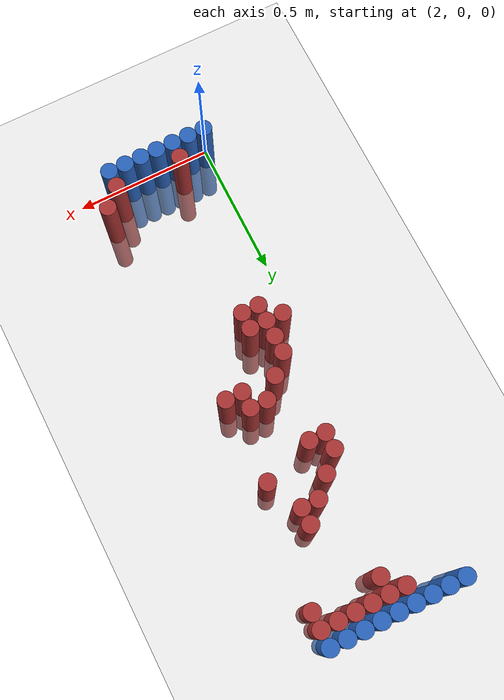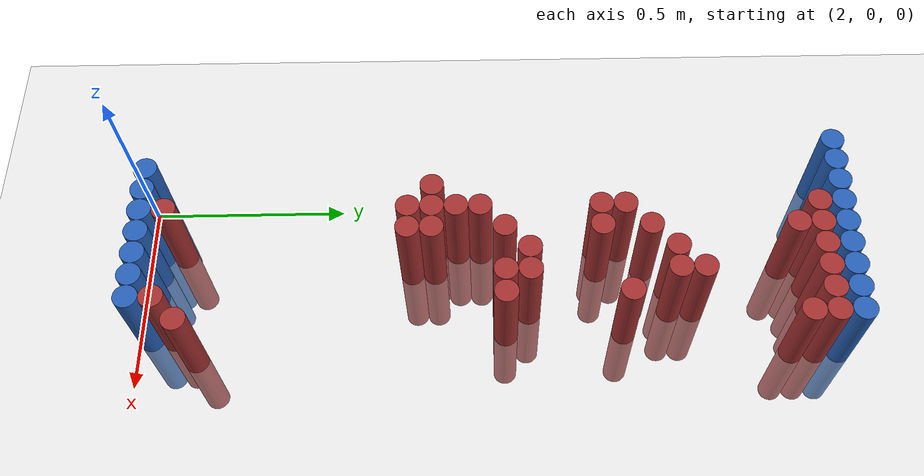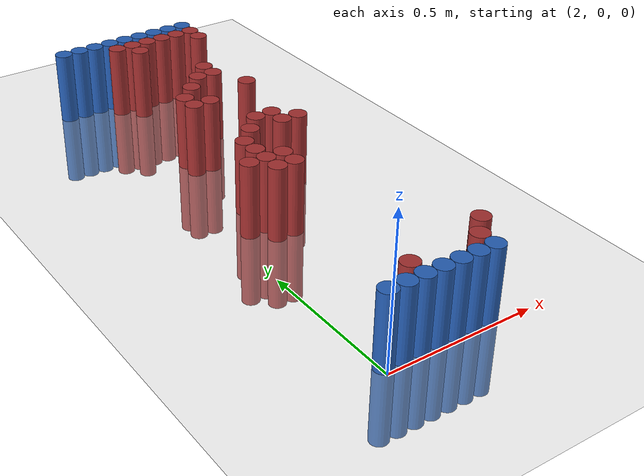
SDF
<sdf version="1.6">
 <world name="default">
  <model name="ground_plane">
   <static>1</static>
   <link name="link">
    <collision name="collision">
     <geometry><plane><normal>0 0 1</normal><size>100 100</size></plane></geometry>
     <surface><friction><ode><mu>100</mu><mu2>50</mu2></ode></friction></surface>
    </collision>
    <visual name="visual">
     <cast_shadows>0</cast_shadows>
     <geometry><plane><normal>0 0 1</normal><size>100 100</size></plane></geometry>
     <material>
      <script><uri>file://media/materials/scripts/gazebo.material</uri><name>Gazebo/Grey</name></script>
     </material>
    </visual>
   </link>
  </model>
  <model name="unit_cylinder_92">
   <static>1</static>
   <pose>1.950000 1.770000 0.000000 0.000000 0.000000 0.000000</pose>
   <link name="link">
    <inertial>
     <mass>1</mass>
     <inertia><ixx>0.145833</ixx><ixy>0</ixy><ixz>0</ixz><iyy>0.145833</iyy><iyz>0</iyz><izz>0.125</izz></inertia>
    </inertial>
    <collision name="collision">
     <geometry><cylinder><radius>0.030000</radius><length>0.5</length></cylinder></geometry>
    </collision>
    <visual name="visual">
     <geometry><cylinder><radius>0.030000</radius><length>0.5</length></cylinder></geometry>
     <material>
      <ambient>0.152000 0.379000 0.720000 1</ambient>
      <diffuse>0.152000 0.379000 0.720000 1</diffuse>
     </material>
     <material>
      <script><name>Gazebo/Grey</name><uri>file://media/materials/scripts/gazebo.material</uri></script>
     </material>
    </visual>
   </link>
  </model>
  <model name="unit_cylinder_93">
   <static>1</static>
   <pose>2.010000 0.030000 0.000000 0.000000 0.000000 0.000000</pose>
   <link name="link">
    <inertial>
     <mass>1</mass>
     <inertia><ixx>0.145833</ixx><ixy>0</ixy><ixz>0</ixz><iyy>0.145833</iyy><iyz>0</iyz><izz>0.125</izz></inertia>
    </inertial>
    <collision name="collision">
     <geometry><cylinder><radius>0.030000</radius><length>0.5</length></cylinder></geometry>
    </collision>
    <visual name="visual">
     <geometry><cylinder><radius>0.030000</radius><length>0.5</length></cylinder></geometry>
     <material>
      <ambient>0.152000 0.379000 0.720000 1</ambient>
      <diffuse>0.152000 0.379000 0.720000 1</diffuse>
     </material>
     <material>
      <script><name>Gazebo/Grey</name><uri>file://media/materials/scripts/gazebo.material</uri></script>
     </material>
    </visual>
   </link>
  </model>
  <model name="unit_cylinder_94">
   <static>1</static>
   <pose>2.010000 1.770000 0.000000 0.000000 0.000000 0.000000</pose>
   <link name="link">
    <inertial>
     <mass>1</mass>
     <inertia><ixx>0.145833</ixx><ixy>0</ixy><ixz>0</ixz><iyy>0.145833</iyy><iyz>0</iyz><izz>0.125</izz></inertia>
    </inertial>
    <collision name="collision">
     <geometry><cylinder><radius>0.030000</radius><length>0.5</length></cylinder></geometry>
    </collision>
    <visual name="visual">
     <geometry><cylinder><radius>0.030000</radius><length>0.5</length></cylinder></geometry>
     <material>
      <ambient>0.152000 0.379000 0.720000 1</ambient>
      <diffuse>0.152000 0.379000 0.720000 1</diffuse>
     </material>
     <material>
      <script><name>Gazebo/Grey</name><uri>file://media/materials/scripts/gazebo.material</uri></script>
     </material>
    </visual>
   </link>
  </model>
  <model name="unit_cylinder_95">
   <static>1</static>
   <pose>2.070000 1.770000 0.000000 0.000000 0.000000 0.000000</pose>
   <link name="link">
    <inertial>
     <mass>1</mass>
     <inertia><ixx>0.145833</ixx><ixy>0</ixy><ixz>0</ixz><iyy>0.145833</iyy><iyz>0</iyz><izz>0.125</izz></inertia>
    </inertial>
    <collision name="collision">
     <geometry><cylinder><radius>0.030000</radius><length>0.5</length></cylinder></geometry>
    </collision>
    <visual name="visual">
     <geometry><cylinder><radius>0.030000</radius><length>0.5</length></cylinder></geometry>
     <material>
      <ambient>0.152000 0.379000 0.720000 1</ambient>
      <diffuse>0.152000 0.379000 0.720000 1</diffuse>
     </material>
     <material>
      <script><name>Gazebo/Grey</name><uri>file://media/materials/scripts/gazebo.material</uri></script>
     </material>
    </visual>
   </link>
  </model>
  <model name="unit_cylinder_96">
   <static>1</static>
   <pose>2.130000 1.770000 0.000000 0.000000 0.000000 0.000000</pose>
   <link name="link">
    <inertial>
     <mass>1</mass>
     <inertia><ixx>0.145833</ixx><ixy>0</ixy><ixz>0</ixz><iyy>0.145833</iyy><iyz>0</iyz><izz>0.125</izz></inertia>
    </inertial>
    <collision name="collision">
     <geometry><cylinder><radius>0.030000</radius><length>0.5</length></cylinder></geometry>
    </collision>
    <visual name="visual">
     <geometry><cylinder><radius>0.030000</radius><length>0.5</length></cylinder></geometry>
     <material>
      <ambient>0.152000 0.379000 0.720000 1</ambient>
      <diffuse>0.152000 0.379000 0.720000 1</diffuse>
     </material>
     <material>
      <script><name>Gazebo/Grey</name><uri>file://media/materials/scripts/gazebo.material</uri></script>
     </material>
    </visual>
   </link>
  </model>
  <model name="unit_cylinder_97">
   <static>1</static>
   <pose>2.190000 1.770000 0.000000 0.000000 0.000000 0.000000</pose>
   <link name="link">
    <inertial>
     <mass>1</mass>
     <inertia><ixx>0.145833</ixx><ixy>0</ixy><ixz>0</ixz><iyy>0.145833</iyy><iyz>0</iyz><izz>0.125</izz></inertia>
    </inertial>
    <collision name="collision">
     <geometry><cylinder><radius>0.030000</radius><length>0.5</length></cylinder></geometry>
    </collision>
    <visual name="visual">
     <geometry><cylinder><radius>0.030000</radius><length>0.5</length></cylinder></geometry>
     <material>
      <ambient>0.152000 0.379000 0.720000 1</ambient>
      <diffuse>0.152000 0.379000 0.720000 1</diffuse>
     </material>
     <material>
      <script><name>Gazebo/Grey</name><uri>file://media/materials/scripts/gazebo.material</uri></script>
     </material>
    </visual>
   </link>
  </model>
  <model name="unit_cylinder_98">
   <static>1</static>
   <pose>2.250000 1.770000 0.000000 0.000000 0.000000 0.000000</pose>
   <link name="link">
    <inertial>
     <mass>1</mass>
     <inertia><ixx>0.145833</ixx><ixy>0</ixy><ixz>0</ixz><iyy>0.145833</iyy><iyz>0</iyz><izz>0.125</izz></inertia>
    </inertial>
    <collision name="collision">
     <geometry><cylinder><radius>0.030000</radius><length>0.5</length></cylinder></geometry>
    </collision>
    <visual name="visual">
     <geometry><cylinder><radius>0.030000</radius><length>0.5</length></cylinder></geometry>
     <material>
      <ambient>0.152000 0.379000 0.720000 1</ambient>
      <diffuse>0.152000 0.379000 0.720000 1</diffuse>
     </material>
     <material>
      <script><name>Gazebo/Grey</name><uri>file://media/materials/scripts/gazebo.material</uri></script>
     </material>
    </visual>
   </link>
  </model>
  <model name="unit_cylinder_99">
   <static>1</static>
   <pose>2.310000 1.770000 0.000000 0.000000 0.000000 0.000000</pose>
   <link name="link">
    <inertial>
     <mass>1</mass>
     <inertia><ixx>0.145833</ixx><ixy>0</ixy><ixz>0</ixz><iyy>0.145833</iyy><iyz>0</iyz><izz>0.125</izz></inertia>
    </inertial>
    <collision name="collision">
     <geometry><cylinder><radius>0.030000</radius><length>0.5</length></cylinder></geometry>
    </collision>
    <visual name="visual">
     <geometry><cylinder><radius>0.030000</radius><length>0.5</length></cylinder></geometry>
     <material>
      <ambient>0.152000 0.379000 0.720000 1</ambient>
      <diffuse>0.152000 0.379000 0.720000 1</diffuse>
     </material>
     <material>
      <script><name>Gazebo/Grey</name><uri>file://media/materials/scripts/gazebo.material</uri></script>
     </material>
    </visual>
   </link>
  </model>
  <model name="unit_cylinder_100">
   <static>1</static>
   <pose>2.370000 1.770000 0.000000 0.000000 0.000000 0.000000</pose>
   <link name="link">
    <inertial>
     <mass>1</mass>
     <inertia><ixx>0.145833</ixx><ixy>0</ixy><ixz>0</ixz><iyy>0.145833</iyy><iyz>0</iyz><izz>0.125</izz></inertia>
    </inertial>
    <collision name="collision">
     <geometry><cylinder><radius>0.030000</radius><length>0.5</length></cylinder></geometry>
    </collision>
    <visual name="visual">
     <geometry><cylinder><radius>0.030000</radius><length>0.5</length></cylinder></geometry>
     <material>
      <ambient>0.152000 0.379000 0.720000 1</ambient>
      <diffuse>0.152000 0.379000 0.720000 1</diffuse>
     </material>
     <material>
      <script><name>Gazebo/Grey</name><uri>file://media/materials/scripts/gazebo.material</uri></script>
     </material>
    </visual>
   </link>
  </model>
  <model name="unit_cylinder_101">
   <static>1</static>
   <pose>2.430000 1.770000 0.000000 0.000000 0.000000 0.000000</pose>
   <link name="link">
    <inertial>
     <mass>1</mass>
     <inertia><ixx>0.145833</ixx><ixy>0</ixy><ixz>0</ixz><iyy>0.145833</iyy><iyz>0</iyz><izz>0.125</izz></inertia>
    </inertial>
    <collision name="collision">
     <geometry><cylinder><radius>0.030000</radius><length>0.5</length></cylinder></geometry>
    </collision>
    <visual name="visual">
     <geometry><cylinder><radius>0.030000</radius><length>0.5</length></cylinder></geometry>
     <material>
      <ambient>0.152000 0.379000 0.720000 1</ambient>
      <diffuse>0.152000 0.379000 0.720000 1</diffuse>
     </material>
     <material>
      <script><name>Gazebo/Grey</name><uri>file://media/materials/scripts/gazebo.material</uri></script>
     </material>
    </visual>
   </link>
  </model>
  <model name="unit_cylinder_125">
   <static>1</static>
   <pose>2.130000 1.710000 0.000000 0.000000 0.000000 0.000000</pose>
   <link name="link">
    <inertial>
     <mass>1</mass>
     <inertia><ixx>0.145833</ixx><ixy>0</ixy><ixz>0</ixz><iyy>0.145833</iyy><iyz>0</iyz><izz>0.125</izz></inertia>
    </inertial>
    <collision name="collision">
     <geometry><cylinder><radius>0.030000</radius><length>0.5</length></cylinder></geometry>
    </collision>
    <visual name="visual">
     <geometry><cylinder><radius>0.030000</radius><length>0.5</length></cylinder></geometry>
     <material>
      <ambient>0.648000 0.192000 0.192000 1</ambient>
      <diffuse>0.648000 0.192000 0.192000 1</diffuse>
     </material>
     <material>
      <script><name>Gazebo/Grey</name><uri>file://media/materials/scripts/gazebo.material</uri></script>
     </material>
    </visual>
   </link>
  </model>
  <model name="unit_cylinder_126">
   <static>1</static>
   <pose>2.190000 1.710000 0.000000 0.000000 0.000000 0.000000</pose>
   <link name="link">
    <inertial>
     <mass>1</mass>
     <inertia><ixx>0.145833</ixx><ixy>0</ixy><ixz>0</ixz><iyy>0.145833</iyy><iyz>0</iyz><izz>0.125</izz></inertia>
    </inertial>
    <collision name="collision">
     <geometry><cylinder><radius>0.030000</radius><length>0.5</length></cylinder></geometry>
    </collision>
    <visual name="visual">
     <geometry><cylinder><radius>0.030000</radius><length>0.5</length></cylinder></geometry>
     <material>
      <ambient>0.648000 0.192000 0.192000 1</ambient>
      <diffuse>0.648000 0.192000 0.192000 1</diffuse>
     </material>
     <material>
      <script><name>Gazebo/Grey</name><uri>file://media/materials/scripts/gazebo.material</uri></script>
     </material>
    </visual>
   </link>
  </model>
  <model name="unit_cylinder_127">
   <static>1</static>
   <pose>2.250000 1.710000 0.000000 0.000000 0.000000 0.000000</pose>
   <link name="link">
    <inertial>
     <mass>1</mass>
     <inertia><ixx>0.145833</ixx><ixy>0</ixy><ixz>0</ixz><iyy>0.145833</iyy><iyz>0</iyz><izz>0.125</izz></inertia>
    </inertial>
    <collision name="collision">
     <geometry><cylinder><radius>0.030000</radius><length>0.5</length></cylinder></geometry>
    </collision>
    <visual name="visual">
     <geometry><cylinder><radius>0.030000</radius><length>0.5</length></cylinder></geometry>
     <material>
      <ambient>0.648000 0.192000 0.192000 1</ambient>
      <diffuse>0.648000 0.192000 0.192000 1</diffuse>
     </material>
     <material>
      <script><name>Gazebo/Grey</name><uri>file://media/materials/scripts/gazebo.material</uri></script>
     </material>
    </visual>
   </link>
  </model>
  <model name="unit_cylinder_128">
   <static>1</static>
   <pose>2.310000 1.710000 0.000000 0.000000 0.000000 0.000000</pose>
   <link name="link">
    <inertial>
     <mass>1</mass>
     <inertia><ixx>0.145833</ixx><ixy>0</ixy><ixz>0</ixz><iyy>0.145833</iyy><iyz>0</iyz><izz>0.125</izz></inertia>
    </inertial>
    <collision name="collision">
     <geometry><cylinder><radius>0.030000</radius><length>0.5</length></cylinder></geometry>
    </collision>
    <visual name="visual">
     <geometry><cylinder><radius>0.030000</radius><length>0.5</length></cylinder></geometry>
     <material>
      <ambient>0.648000 0.192000 0.192000 1</ambient>
      <diffuse>0.648000 0.192000 0.192000 1</diffuse>
     </material>
     <material>
      <script><name>Gazebo/Grey</name><uri>file://media/materials/scripts/gazebo.material</uri></script>
     </material>
    </visual>
   </link>
  </model>
  <model name="unit_cylinder_129">
   <static>1</static>
   <pose>2.370000 1.710000 0.000000 0.000000 0.000000 0.000000</pose>
   <link name="link">
    <inertial>
     <mass>1</mass>
     <inertia><ixx>0.145833</ixx><ixy>0</ixy><ixz>0</ixz><iyy>0.145833</iyy><iyz>0</iyz><izz>0.125</izz></inertia>
    </inertial>
    <collision name="collision">
     <geometry><cylinder><radius>0.030000</radius><length>0.5</length></cylinder></geometry>
    </collision>
    <visual name="visual">
     <geometry><cylinder><radius>0.030000</radius><length>0.5</length></cylinder></geometry>
     <material>
      <ambient>0.648000 0.192000 0.192000 1</ambient>
      <diffuse>0.648000 0.192000 0.192000 1</diffuse>
     </material>
     <material>
      <script><name>Gazebo/Grey</name><uri>file://media/materials/scripts/gazebo.material</uri></script>
     </material>
    </visual>
   </link>
  </model>
  <model name="unit_cylinder_130">
   <static>1</static>
   <pose>2.430000 1.710000 0.000000 0.000000 0.000000 0.000000</pose>
   <link name="link">
    <inertial>
     <mass>1</mass>
     <inertia><ixx>0.145833</ixx><ixy>0</ixy><ixz>0</ixz><iyy>0.145833</iyy><iyz>0</iyz><izz>0.125</izz></inertia>
    </inertial>
    <collision name="collision">
     <geometry><cylinder><radius>0.030000</radius><length>0.5</length></cylinder></geometry>
    </collision>
    <visual name="visual">
     <geometry><cylinder><radius>0.030000</radius><length>0.5</length></cylinder></geometry>
     <material>
      <ambient>0.648000 0.192000 0.192000 1</ambient>
      <diffuse>0.648000 0.192000 0.192000 1</diffuse>
     </material>
     <material>
      <script><name>Gazebo/Grey</name><uri>file://media/materials/scripts/gazebo.material</uri></script>
     </material>
    </visual>
   </link>
  </model>
  <model name="unit_cylinder_139">
   <static>1</static>
   <pose>2.190000 1.650000 0.000000 0.000000 0.000000 0.000000</pose>
   <link name="link">
    <inertial>
     <mass>1</mass>
     <inertia><ixx>0.145833</ixx><ixy>0</ixy><ixz>0</ixz><iyy>0.145833</iyy><iyz>0</iyz><izz>0.125</izz></inertia>
    </inertial>
    <collision name="collision">
     <geometry><cylinder><radius>0.030000</radius><length>0.5</length></cylinder></geometry>
    </collision>
    <visual name="visual">
     <geometry><cylinder><radius>0.030000</radius><length>0.5</length></cylinder></geometry>
     <material>
      <ambient>0.648000 0.192000 0.192000 1</ambient>
      <diffuse>0.648000 0.192000 0.192000 1</diffuse>
     </material>
     <material>
      <script><name>Gazebo/Grey</name><uri>file://media/materials/scripts/gazebo.material</uri></script>
     </material>
    </visual>
   </link>
  </model>
  <model name="unit_cylinder_140">
   <static>1</static>
   <pose>2.430000 1.650000 0.000000 0.000000 0.000000 0.000000</pose>
   <link name="link">
    <inertial>
     <mass>1</mass>
     <inertia><ixx>0.145833</ixx><ixy>0</ixy><ixz>0</ixz><iyy>0.145833</iyy><iyz>0</iyz><izz>0.125</izz></inertia>
    </inertial>
    <collision name="collision">
     <geometry><cylinder><radius>0.030000</radius><length>0.5</length></cylinder></geometry>
    </collision>
    <visual name="visual">
     <geometry><cylinder><radius>0.030000</radius><length>0.5</length></cylinder></geometry>
     <material>
      <ambient>0.648000 0.192000 0.192000 1</ambient>
      <diffuse>0.648000 0.192000 0.192000 1</diffuse>
     </material>
     <material>
      <script><name>Gazebo/Grey</name><uri>file://media/materials/scripts/gazebo.material</uri></script>
     </material>
    </visual>
   </link>
  </model>
  <model name="unit_cylinder_159">
   <static>1</static>
   <pose>2.310000 1.410000 0.000000 0.000000 0.000000 0.000000</pose>
   <link name="link">
    <inertial>
     <mass>1</mass>
     <inertia><ixx>0.145833</ixx><ixy>0</ixy><ixz>0</ixz><iyy>0.145833</iyy><iyz>0</iyz><izz>0.125</izz></inertia>
    </inertial>
    <collision name="collision">
     <geometry><cylinder><radius>0.030000</radius><length>0.5</length></cylinder></geometry>
    </collision>
    <visual name="visual">
     <geometry><cylinder><radius>0.030000</radius><length>0.5</length></cylinder></geometry>
     <material>
      <ambient>0.648000 0.192000 0.192000 1</ambient>
      <diffuse>0.648000 0.192000 0.192000 1</diffuse>
     </material>
     <material>
      <script><name>Gazebo/Grey</name><uri>file://media/materials/scripts/gazebo.material</uri></script>
     </material>
    </visual>
   </link>
  </model>
  <model name="unit_cylinder_163">
   <static>1</static>
   <pose>2.250000 1.350000 0.000000 0.000000 0.000000 0.000000</pose>
   <link name="link">
    <inertial>
     <mass>1</mass>
     <inertia><ixx>0.145833</ixx><ixy>0</ixy><ixz>0</ixz><iyy>0.145833</iyy><iyz>0</iyz><izz>0.125</izz></inertia>
    </inertial>
    <collision name="collision">
     <geometry><cylinder><radius>0.030000</radius><length>0.5</length></cylinder></geometry>
    </collision>
    <visual name="visual">
     <geometry><cylinder><radius>0.030000</radius><length>0.5</length></cylinder></geometry>
     <material>
      <ambient>0.648000 0.192000 0.192000 1</ambient>
      <diffuse>0.648000 0.192000 0.192000 1</diffuse>
     </material>
     <material>
      <script><name>Gazebo/Grey</name><uri>file://media/materials/scripts/gazebo.material</uri></script>
     </material>
    </visual>
   </link>
  </model>
  <model name="unit_cylinder_164">
   <static>1</static>
   <pose>2.310000 1.350000 0.000000 0.000000 0.000000 0.000000</pose>
   <link name="link">
    <inertial>
     <mass>1</mass>
     <inertia><ixx>0.145833</ixx><ixy>0</ixy><ixz>0</ixz><iyy>0.145833</iyy><iyz>0</iyz><izz>0.125</izz></inertia>
    </inertial>
    <collision name="collision">
     <geometry><cylinder><radius>0.030000</radius><length>0.5</length></cylinder></geometry>
    </collision>
    <visual name="visual">
     <geometry><cylinder><radius>0.030000</radius><length>0.5</length></cylinder></geometry>
     <material>
      <ambient>0.648000 0.192000 0.192000 1</ambient>
      <diffuse>0.648000 0.192000 0.192000 1</diffuse>
     </material>
     <material>
      <script><name>Gazebo/Grey</name><uri>file://media/materials/scripts/gazebo.material</uri></script>
     </material>
    </visual>
   </link>
  </model>
  <model name="unit_cylinder_169">
   <static>1</static>
   <pose>2.190000 1.290000 0.000000 0.000000 0.000000 0.000000</pose>
   <link name="link">
    <inertial>
     <mass>1</mass>
     <inertia><ixx>0.145833</ixx><ixy>0</ixy><ixz>0</ixz><iyy>0.145833</iyy><iyz>0</iyz><izz>0.125</izz></inertia>
    </inertial>
    <collision name="collision">
     <geometry><cylinder><radius>0.030000</radius><length>0.5</length></cylinder></geometry>
    </collision>
    <visual name="visual">
     <geometry><cylinder><radius>0.030000</radius><length>0.5</length></cylinder></geometry>
     <material>
      <ambient>0.648000 0.192000 0.192000 1</ambient>
      <diffuse>0.648000 0.192000 0.192000 1</diffuse>
     </material>
     <material>
      <script><name>Gazebo/Grey</name><uri>file://media/materials/scripts/gazebo.material</uri></script>
     </material>
    </visual>
   </link>
  </model>
  <model name="unit_cylinder_173">
   <static>1</static>
   <pose>2.130000 1.230000 0.000000 0.000000 0.000000 0.000000</pose>
   <link name="link">
    <inertial>
     <mass>1</mass>
     <inertia><ixx>0.145833</ixx><ixy>0</ixy><ixz>0</ixz><iyy>0.145833</iyy><iyz>0</iyz><izz>0.125</izz></inertia>
    </inertial>
    <collision name="collision">
     <geometry><cylinder><radius>0.030000</radius><length>0.5</length></cylinder></geometry>
    </collision>
    <visual name="visual">
     <geometry><cylinder><radius>0.030000</radius><length>0.5</length></cylinder></geometry>
     <material>
      <ambient>0.648000 0.192000 0.192000 1</ambient>
      <diffuse>0.648000 0.192000 0.192000 1</diffuse>
     </material>
     <material>
      <script><name>Gazebo/Grey</name><uri>file://media/materials/scripts/gazebo.material</uri></script>
     </material>
    </visual>
   </link>
  </model>
  <model name="unit_cylinder_174">
   <static>1</static>
   <pose>2.370000 1.230000 0.000000 0.000000 0.000000 0.000000</pose>
   <link name="link">
    <inertial>
     <mass>1</mass>
     <inertia><ixx>0.145833</ixx><ixy>0</ixy><ixz>0</ixz><iyy>0.145833</iyy><iyz>0</iyz><izz>0.125</izz></inertia>
    </inertial>
    <collision name="collision">
     <geometry><cylinder><radius>0.030000</radius><length>0.5</length></cylinder></geometry>
    </collision>
    <visual name="visual">
     <geometry><cylinder><radius>0.030000</radius><length>0.5</length></cylinder></geometry>
     <material>
      <ambient>0.648000 0.192000 0.192000 1</ambient>
      <diffuse>0.648000 0.192000 0.192000 1</diffuse>
     </material>
     <material>
      <script><name>Gazebo/Grey</name><uri>file://media/materials/scripts/gazebo.material</uri></script>
     </material>
    </visual>
   </link>
  </model>
  <model name="unit_cylinder_179">
   <static>1</static>
   <pose>2.130000 1.170000 0.000000 0.000000 0.000000 0.000000</pose>
   <link name="link">
    <inertial>
     <mass>1</mass>
     <inertia><ixx>0.145833</ixx><ixy>0</ixy><ixz>0</ixz><iyy>0.145833</iyy><iyz>0</iyz><izz>0.125</izz></inertia>
    </inertial>
    <collision name="collision">
     <geometry><cylinder><radius>0.030000</radius><length>0.5</length></cylinder></geometry>
    </collision>
    <visual name="visual">
     <geometry><cylinder><radius>0.030000</radius><length>0.5</length></cylinder></geometry>
     <material>
      <ambient>0.648000 0.192000 0.192000 1</ambient>
      <diffuse>0.648000 0.192000 0.192000 1</diffuse>
     </material>
     <material>
      <script><name>Gazebo/Grey</name><uri>file://media/materials/scripts/gazebo.material</uri></script>
     </material>
    </visual>
   </link>
  </model>
  <model name="unit_cylinder_180">
   <static>1</static>
   <pose>2.190000 1.170000 0.000000 0.000000 0.000000 0.000000</pose>
   <link name="link">
    <inertial>
     <mass>1</mass>
     <inertia><ixx>0.145833</ixx><ixy>0</ixy><ixz>0</ixz><iyy>0.145833</iyy><iyz>0</iyz><izz>0.125</izz></inertia>
    </inertial>
    <collision name="collision">
     <geometry><cylinder><radius>0.030000</radius><length>0.5</length></cylinder></geometry>
    </collision>
    <visual name="visual">
     <geometry><cylinder><radius>0.030000</radius><length>0.5</length></cylinder></geometry>
     <material>
      <ambient>0.648000 0.192000 0.192000 1</ambient>
      <diffuse>0.648000 0.192000 0.192000 1</diffuse>
     </material>
     <material>
      <script><name>Gazebo/Grey</name><uri>file://media/materials/scripts/gazebo.material</uri></script>
     </material>
    </visual>
   </link>
  </model>
  <model name="unit_cylinder_202">
   <static>1</static>
   <pose>2.250000 0.990000 0.000000 0.000000 0.000000 0.000000</pose>
   <link name="link">
    <inertial>
     <mass>1</mass>
     <inertia><ixx>0.145833</ixx><ixy>0</ixy><ixz>0</ixz><iyy>0.145833</iyy><iyz>0</iyz><izz>0.125</izz></inertia>
    </inertial>
    <collision name="collision">
     <geometry><cylinder><radius>0.030000</radius><length>0.5</length></cylinder></geometry>
    </collision>
    <visual name="visual">
     <geometry><cylinder><radius>0.030000</radius><length>0.5</length></cylinder></geometry>
     <material>
      <ambient>0.648000 0.192000 0.192000 1</ambient>
      <diffuse>0.648000 0.192000 0.192000 1</diffuse>
     </material>
     <material>
      <script><name>Gazebo/Grey</name><uri>file://media/materials/scripts/gazebo.material</uri></script>
     </material>
    </visual>
   </link>
  </model>
  <model name="unit_cylinder_203">
   <static>1</static>
   <pose>2.310000 0.990000 0.000000 0.000000 0.000000 0.000000</pose>
   <link name="link">
    <inertial>
     <mass>1</mass>
     <inertia><ixx>0.145833</ixx><ixy>0</ixy><ixz>0</ixz><iyy>0.145833</iyy><iyz>0</iyz><izz>0.125</izz></inertia>
    </inertial>
    <collision name="collision">
     <geometry><cylinder><radius>0.030000</radius><length>0.5</length></cylinder></geometry>
    </collision>
    <visual name="visual">
     <geometry><cylinder><radius>0.030000</radius><length>0.5</length></cylinder></geometry>
     <material>
      <ambient>0.648000 0.192000 0.192000 1</ambient>
      <diffuse>0.648000 0.192000 0.192000 1</diffuse>
     </material>
     <material>
      <script><name>Gazebo/Grey</name><uri>file://media/materials/scripts/gazebo.material</uri></script>
     </material>
    </visual>
   </link>
  </model>
  <model name="unit_cylinder_206">
   <static>1</static>
   <pose>2.190000 0.930000 0.000000 0.000000 0.000000 0.000000</pose>
   <link name="link">
    <inertial>
     <mass>1</mass>
     <inertia><ixx>0.145833</ixx><ixy>0</ixy><ixz>0</ixz><iyy>0.145833</iyy><iyz>0</iyz><izz>0.125</izz></inertia>
    </inertial>
    <collision name="collision">
     <geometry><cylinder><radius>0.030000</radius><length>0.5</length></cylinder></geometry>
    </collision>
    <visual name="visual">
     <geometry><cylinder><radius>0.030000</radius><length>0.5</length></cylinder></geometry>
     <material>
      <ambient>0.648000 0.192000 0.192000 1</ambient>
      <diffuse>0.648000 0.192000 0.192000 1</diffuse>
     </material>
     <material>
      <script><name>Gazebo/Grey</name><uri>file://media/materials/scripts/gazebo.material</uri></script>
     </material>
    </visual>
   </link>
  </model>
  <model name="unit_cylinder_207">
   <static>1</static>
   <pose>2.310000 0.930000 0.000000 0.000000 0.000000 0.000000</pose>
   <link name="link">
    <inertial>
     <mass>1</mass>
     <inertia><ixx>0.145833</ixx><ixy>0</ixy><ixz>0</ixz><iyy>0.145833</iyy><iyz>0</iyz><izz>0.125</izz></inertia>
    </inertial>
    <collision name="collision">
     <geometry><cylinder><radius>0.030000</radius><length>0.5</length></cylinder></geometry>
    </collision>
    <visual name="visual">
     <geometry><cylinder><radius>0.030000</radius><length>0.5</length></cylinder></geometry>
     <material>
      <ambient>0.648000 0.192000 0.192000 1</ambient>
      <diffuse>0.648000 0.192000 0.192000 1</diffuse>
     </material>
     <material>
      <script><name>Gazebo/Grey</name><uri>file://media/materials/scripts/gazebo.material</uri></script>
     </material>
    </visual>
   </link>
  </model>
  <model name="unit_cylinder_208">
   <static>1</static>
   <pose>2.370000 0.930000 0.000000 0.000000 0.000000 0.000000</pose>
   <link name="link">
    <inertial>
     <mass>1</mass>
     <inertia><ixx>0.145833</ixx><ixy>0</ixy><ixz>0</ixz><iyy>0.145833</iyy><iyz>0</iyz><izz>0.125</izz></inertia>
    </inertial>
    <collision name="collision">
     <geometry><cylinder><radius>0.030000</radius><length>0.5</length></cylinder></geometry>
    </collision>
    <visual name="visual">
     <geometry><cylinder><radius>0.030000</radius><length>0.5</length></cylinder></geometry>
     <material>
      <ambient>0.648000 0.192000 0.192000 1</ambient>
      <diffuse>0.648000 0.192000 0.192000 1</diffuse>
     </material>
     <material>
      <script><name>Gazebo/Grey</name><uri>file://media/materials/scripts/gazebo.material</uri></script>
     </material>
    </visual>
   </link>
  </model>
  <model name="unit_cylinder_210">
   <static>1</static>
   <pose>2.130000 0.870000 0.000000 0.000000 0.000000 0.000000</pose>
   <link name="link">
    <inertial>
     <mass>1</mass>
     <inertia><ixx>0.145833</ixx><ixy>0</ixy><ixz>0</ixz><iyy>0.145833</iyy><iyz>0</iyz><izz>0.125</izz></inertia>
    </inertial>
    <collision name="collision">
     <geometry><cylinder><radius>0.030000</radius><length>0.5</length></cylinder></geometry>
    </collision>
    <visual name="visual">
     <geometry><cylinder><radius>0.030000</radius><length>0.5</length></cylinder></geometry>
     <material>
      <ambient>0.648000 0.192000 0.192000 1</ambient>
      <diffuse>0.648000 0.192000 0.192000 1</diffuse>
     </material>
     <material>
      <script><name>Gazebo/Grey</name><uri>file://media/materials/scripts/gazebo.material</uri></script>
     </material>
    </visual>
   </link>
  </model>
  <model name="unit_cylinder_213">
   <static>1</static>
   <pose>2.130000 0.810000 0.000000 0.000000 0.000000 0.000000</pose>
   <link name="link">
    <inertial>
     <mass>1</mass>
     <inertia><ixx>0.145833</ixx><ixy>0</ixy><ixz>0</ixz><iyy>0.145833</iyy><iyz>0</iyz><izz>0.125</izz></inertia>
    </inertial>
    <collision name="collision">
     <geometry><cylinder><radius>0.030000</radius><length>0.5</length></cylinder></geometry>
    </collision>
    <visual name="visual">
     <geometry><cylinder><radius>0.030000</radius><length>0.5</length></cylinder></geometry>
     <material>
      <ambient>0.648000 0.192000 0.192000 1</ambient>
      <diffuse>0.648000 0.192000 0.192000 1</diffuse>
     </material>
     <material>
      <script><name>Gazebo/Grey</name><uri>file://media/materials/scripts/gazebo.material</uri></script>
     </material>
    </visual>
   </link>
  </model>
  <model name="unit_cylinder_219">
   <static>1</static>
   <pose>2.070000 0.750000 0.000000 0.000000 0.000000 0.000000</pose>
   <link name="link">
    <inertial>
     <mass>1</mass>
     <inertia><ixx>0.145833</ixx><ixy>0</ixy><ixz>0</ixz><iyy>0.145833</iyy><iyz>0</iyz><izz>0.125</izz></inertia>
    </inertial>
    <collision name="collision">
     <geometry><cylinder><radius>0.030000</radius><length>0.5</length></cylinder></geometry>
    </collision>
    <visual name="visual">
     <geometry><cylinder><radius>0.030000</radius><length>0.5</length></cylinder></geometry>
     <material>
      <ambient>0.648000 0.192000 0.192000 1</ambient>
      <diffuse>0.648000 0.192000 0.192000 1</diffuse>
     </material>
     <material>
      <script><name>Gazebo/Grey</name><uri>file://media/materials/scripts/gazebo.material</uri></script>
     </material>
    </visual>
   </link>
  </model>
  <model name="unit_cylinder_220">
   <static>1</static>
   <pose>2.130000 0.750000 0.000000 0.000000 0.000000 0.000000</pose>
   <link name="link">
    <inertial>
     <mass>1</mass>
     <inertia><ixx>0.145833</ixx><ixy>0</ixy><ixz>0</ixz><iyy>0.145833</iyy><iyz>0</iyz><izz>0.125</izz></inertia>
    </inertial>
    <collision name="collision">
     <geometry><cylinder><radius>0.030000</radius><length>0.5</length></cylinder></geometry>
    </collision>
    <visual name="visual">
     <geometry><cylinder><radius>0.030000</radius><length>0.5</length></cylinder></geometry>
     <material>
      <ambient>0.648000 0.192000 0.192000 1</ambient>
      <diffuse>0.648000 0.192000 0.192000 1</diffuse>
     </material>
     <material>
      <script><name>Gazebo/Grey</name><uri>file://media/materials/scripts/gazebo.material</uri></script>
     </material>
    </visual>
   </link>
  </model>
  <model name="unit_cylinder_221">
   <static>1</static>
   <pose>2.190000 0.750000 0.000000 0.000000 0.000000 0.000000</pose>
   <link name="link">
    <inertial>
     <mass>1</mass>
     <inertia><ixx>0.145833</ixx><ixy>0</ixy><ixz>0</ixz><iyy>0.145833</iyy><iyz>0</iyz><izz>0.125</izz></inertia>
    </inertial>
    <collision name="collision">
     <geometry><cylinder><radius>0.030000</radius><length>0.5</length></cylinder></geometry>
    </collision>
    <visual name="visual">
     <geometry><cylinder><radius>0.030000</radius><length>0.5</length></cylinder></geometry>
     <material>
      <ambient>0.648000 0.192000 0.192000 1</ambient>
      <diffuse>0.648000 0.192000 0.192000 1</diffuse>
     </material>
     <material>
      <script><name>Gazebo/Grey</name><uri>file://media/materials/scripts/gazebo.material</uri></script>
     </material>
    </visual>
   </link>
  </model>
  <model name="unit_cylinder_224">
   <static>1</static>
   <pose>2.130000 0.690000 0.000000 0.000000 0.000000 0.000000</pose>
   <link name="link">
    <inertial>
     <mass>1</mass>
     <inertia><ixx>0.145833</ixx><ixy>0</ixy><ixz>0</ixz><iyy>0.145833</iyy><iyz>0</iyz><izz>0.125</izz></inertia>
    </inertial>
    <collision name="collision">
     <geometry><cylinder><radius>0.030000</radius><length>0.5</length></cylinder></geometry>
    </collision>
    <visual name="visual">
     <geometry><cylinder><radius>0.030000</radius><length>0.5</length></cylinder></geometry>
     <material>
      <ambient>0.648000 0.192000 0.192000 1</ambient>
      <diffuse>0.648000 0.192000 0.192000 1</diffuse>
     </material>
     <material>
      <script><name>Gazebo/Grey</name><uri>file://media/materials/scripts/gazebo.material</uri></script>
     </material>
    </visual>
   </link>
  </model>
  <model name="unit_cylinder_225">
   <static>1</static>
   <pose>2.190000 0.690000 0.000000 0.000000 0.000000 0.000000</pose>
   <link name="link">
    <inertial>
     <mass>1</mass>
     <inertia><ixx>0.145833</ixx><ixy>0</ixy><ixz>0</ixz><iyy>0.145833</iyy><iyz>0</iyz><izz>0.125</izz></inertia>
    </inertial>
    <collision name="collision">
     <geometry><cylinder><radius>0.030000</radius><length>0.5</length></cylinder></geometry>
    </collision>
    <visual name="visual">
     <geometry><cylinder><radius>0.030000</radius><length>0.5</length></cylinder></geometry>
     <material>
      <ambient>0.648000 0.192000 0.192000 1</ambient>
      <diffuse>0.648000 0.192000 0.192000 1</diffuse>
     </material>
     <material>
      <script><name>Gazebo/Grey</name><uri>file://media/materials/scripts/gazebo.material</uri></script>
     </material>
    </visual>
   </link>
  </model>
  <model name="unit_cylinder_230">
   <static>1</static>
   <pose>2.430000 0.150000 0.000000 0.000000 0.000000 0.000000</pose>
   <link name="link">
    <inertial>
     <mass>1</mass>
     <inertia><ixx>0.145833</ixx><ixy>0</ixy><ixz>0</ixz><iyy>0.145833</iyy><iyz>0</iyz><izz>0.125</izz></inertia>
    </inertial>
    <collision name="collision">
     <geometry><cylinder><radius>0.030000</radius><length>0.5</length></cylinder></geometry>
    </collision>
    <visual name="visual">
     <geometry><cylinder><radius>0.030000</radius><length>0.5</length></cylinder></geometry>
     <material>
      <ambient>0.648000 0.192000 0.192000 1</ambient>
      <diffuse>0.648000 0.192000 0.192000 1</diffuse>
     </material>
     <material>
      <script><name>Gazebo/Grey</name><uri>file://media/materials/scripts/gazebo.material</uri></script>
     </material>
    </visual>
   </link>
  </model>
  <model name="unit_cylinder_232">
   <static>1</static>
   <pose>2.130000 0.090000 0.000000 0.000000 0.000000 0.000000</pose>
   <link name="link">
    <inertial>
     <mass>1</mass>
     <inertia><ixx>0.145833</ixx><ixy>0</ixy><ixz>0</ixz><iyy>0.145833</iyy><iyz>0</iyz><izz>0.125</izz></inertia>
    </inertial>
    <collision name="collision">
     <geometry><cylinder><radius>0.030000</radius><length>0.5</length></cylinder></geometry>
    </collision>
    <visual name="visual">
     <geometry><cylinder><radius>0.030000</radius><length>0.5</length></cylinder></geometry>
     <material>
      <ambient>0.648000 0.192000 0.192000 1</ambient>
      <diffuse>0.648000 0.192000 0.192000 1</diffuse>
     </material>
     <material>
      <script><name>Gazebo/Grey</name><uri>file://media/materials/scripts/gazebo.material</uri></script>
     </material>
    </visual>
   </link>
  </model>
  <model name="unit_cylinder_233">
   <static>1</static>
   <pose>2.370000 0.090000 0.000000 0.000000 0.000000 0.000000</pose>
   <link name="link">
    <inertial>
     <mass>1</mass>
     <inertia><ixx>0.145833</ixx><ixy>0</ixy><ixz>0</ixz><iyy>0.145833</iyy><iyz>0</iyz><izz>0.125</izz></inertia>
    </inertial>
    <collision name="collision">
     <geometry><cylinder><radius>0.030000</radius><length>0.5</length></cylinder></geometry>
    </collision>
    <visual name="visual">
     <geometry><cylinder><radius>0.030000</radius><length>0.5</length></cylinder></geometry>
     <material>
      <ambient>0.648000 0.192000 0.192000 1</ambient>
      <diffuse>0.648000 0.192000 0.192000 1</diffuse>
     </material>
     <material>
      <script><name>Gazebo/Grey</name><uri>file://media/materials/scripts/gazebo.material</uri></script>
     </material>
    </visual>
   </link>
  </model>
  <model name="unit_cylinder_248">
   <static>1</static>
   <pose>2.070000 0.030000 0.000000 0.000000 0.000000 0.000000</pose>
   <link name="link">
    <inertial>
     <mass>1</mass>
     <inertia><ixx>0.145833</ixx><ixy>0</ixy><ixz>0</ixz><iyy>0.145833</iyy><iyz>0</iyz><izz>0.125</izz></inertia>
    </inertial>
    <collision name="collision">
     <geometry><cylinder><radius>0.030000</radius><length>0.5</length></cylinder></geometry>
    </collision>
    <visual name="visual">
     <geometry><cylinder><radius>0.030000</radius><length>0.5</length></cylinder></geometry>
     <material>
      <ambient>0.152000 0.379000 0.720000 1</ambient>
      <diffuse>0.152000 0.379000 0.720000 1</diffuse>
     </material>
     <material>
      <script><name>Gazebo/Grey</name><uri>file://media/materials/scripts/gazebo.material</uri></script>
     </material>
    </visual>
   </link>
  </model>
  <model name="unit_cylinder_249">
   <static>1</static>
   <pose>2.130000 0.030000 0.000000 0.000000 0.000000 0.000000</pose>
   <link name="link">
    <inertial>
     <mass>1</mass>
     <inertia><ixx>0.145833</ixx><ixy>0</ixy><ixz>0</ixz><iyy>0.145833</iyy><iyz>0</iyz><izz>0.125</izz></inertia>
    </inertial>
    <collision name="collision">
     <geometry><cylinder><radius>0.030000</radius><length>0.5</length></cylinder></geometry>
    </collision>
    <visual name="visual">
     <geometry><cylinder><radius>0.030000</radius><length>0.5</length></cylinder></geometry>
     <material>
      <ambient>0.152000 0.379000 0.720000 1</ambient>
      <diffuse>0.152000 0.379000 0.720000 1</diffuse>
     </material>
     <material>
      <script><name>Gazebo/Grey</name><uri>file://media/materials/scripts/gazebo.material</uri></script>
     </material>
    </visual>
   </link>
  </model>
  <model name="unit_cylinder_250">
   <static>1</static>
   <pose>2.190000 0.030000 0.000000 0.000000 0.000000 0.000000</pose>
   <link name="link">
    <inertial>
     <mass>1</mass>
     <inertia><ixx>0.145833</ixx><ixy>0</ixy><ixz>0</ixz><iyy>0.145833</iyy><iyz>0</iyz><izz>0.125</izz></inertia>
    </inertial>
    <collision name="collision">
     <geometry><cylinder><radius>0.030000</radius><length>0.5</length></cylinder></geometry>
    </collision>
    <visual name="visual">
     <geometry><cylinder><radius>0.030000</radius><length>0.5</length></cylinder></geometry>
     <material>
      <ambient>0.152000 0.379000 0.720000 1</ambient>
      <diffuse>0.152000 0.379000 0.720000 1</diffuse>
     </material>
     <material>
      <script><name>Gazebo/Grey</name><uri>file://media/materials/scripts/gazebo.material</uri></script>
     </material>
    </visual>
   </link>
  </model>
  <model name="unit_cylinder_251">
   <static>1</static>
   <pose>2.250000 0.030000 0.000000 0.000000 0.000000 0.000000</pose>
   <link name="link">
    <inertial>
     <mass>1</mass>
     <inertia><ixx>0.145833</ixx><ixy>0</ixy><ixz>0</ixz><iyy>0.145833</iyy><iyz>0</iyz><izz>0.125</izz></inertia>
    </inertial>
    <collision name="collision">
     <geometry><cylinder><radius>0.030000</radius><length>0.5</length></cylinder></geometry>
    </collision>
    <visual name="visual">
     <geometry><cylinder><radius>0.030000</radius><length>0.5</length></cylinder></geometry>
     <material>
      <ambient>0.152000 0.379000 0.720000 1</ambient>
      <diffuse>0.152000 0.379000 0.720000 1</diffuse>
     </material>
     <material>
      <script><name>Gazebo/Grey</name><uri>file://media/materials/scripts/gazebo.material</uri></script>
     </material>
    </visual>
   </link>
  </model>
  <model name="unit_cylinder_252">
   <static>1</static>
   <pose>2.310000 0.030000 0.000000 0.000000 0.000000 0.000000</pose>
   <link name="link">
    <inertial>
     <mass>1</mass>
     <inertia><ixx>0.145833</ixx><ixy>0</ixy><ixz>0</ixz><iyy>0.145833</iyy><iyz>0</iyz><izz>0.125</izz></inertia>
    </inertial>
    <collision name="collision">
     <geometry><cylinder><radius>0.030000</radius><length>0.5</length></cylinder></geometry>
    </collision>
    <visual name="visual">
     <geometry><cylinder><radius>0.030000</radius><length>0.5</length></cylinder></geometry>
     <material>
      <ambient>0.152000 0.379000 0.720000 1</ambient>
      <diffuse>0.152000 0.379000 0.720000 1</diffuse>
     </material>
     <material>
      <script><name>Gazebo/Grey</name><uri>file://media/materials/scripts/gazebo.material</uri></script>
     </material>
    </visual>
   </link>
  </model>
  <model name="unit_cylinder_253">
   <static>1</static>
   <pose>2.370000 0.030000 0.000000 0.000000 0.000000 0.000000</pose>
   <link name="link">
    <inertial>
     <mass>1</mass>
     <inertia><ixx>0.145833</ixx><ixy>0</ixy><ixz>0</ixz><iyy>0.145833</iyy><iyz>0</iyz><izz>0.125</izz></inertia>
    </inertial>
    <collision name="collision">
     <geometry><cylinder><radius>0.030000</radius><length>0.5</length></cylinder></geometry>
    </collision>
    <visual name="visual">
     <geometry><cylinder><radius>0.030000</radius><length>0.5</length></cylinder></geometry>
     <material>
      <ambient>0.152000 0.379000 0.720000 1</ambient>
      <diffuse>0.152000 0.379000 0.720000 1</diffuse>
     </material>
     <material>
      <script><name>Gazebo/Grey</name><uri>file://media/materials/scripts/gazebo.material</uri></script>
     </material>
    </visual>
   </link>
  </model>
 </world>
</sdf>
